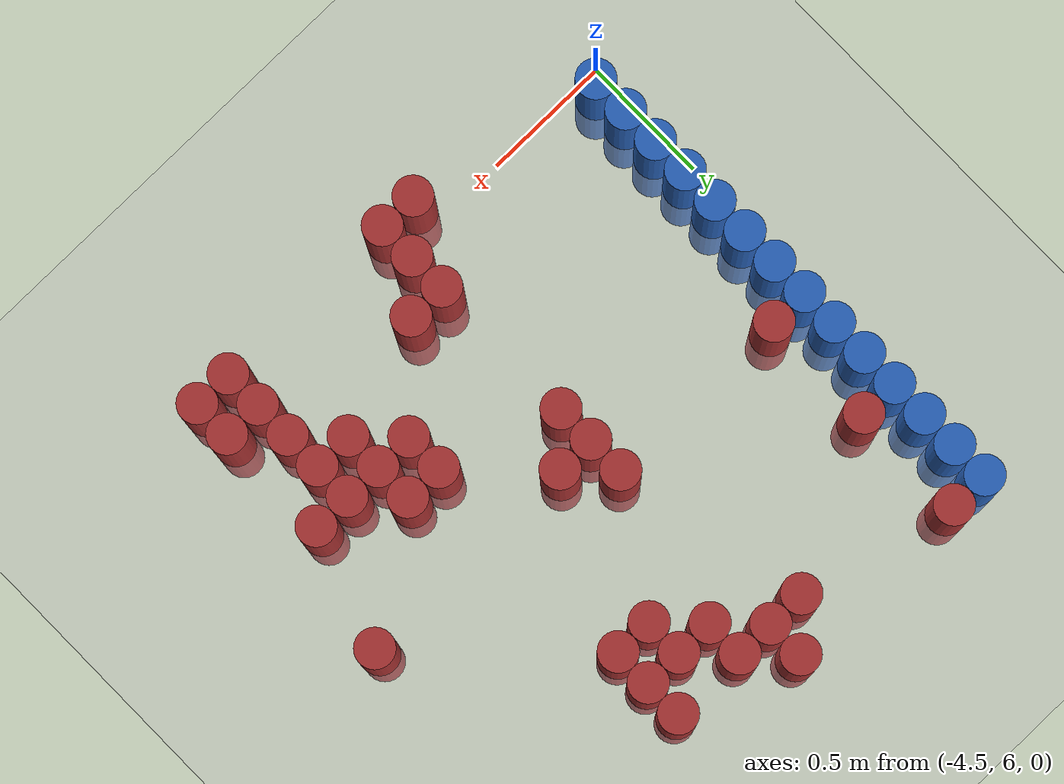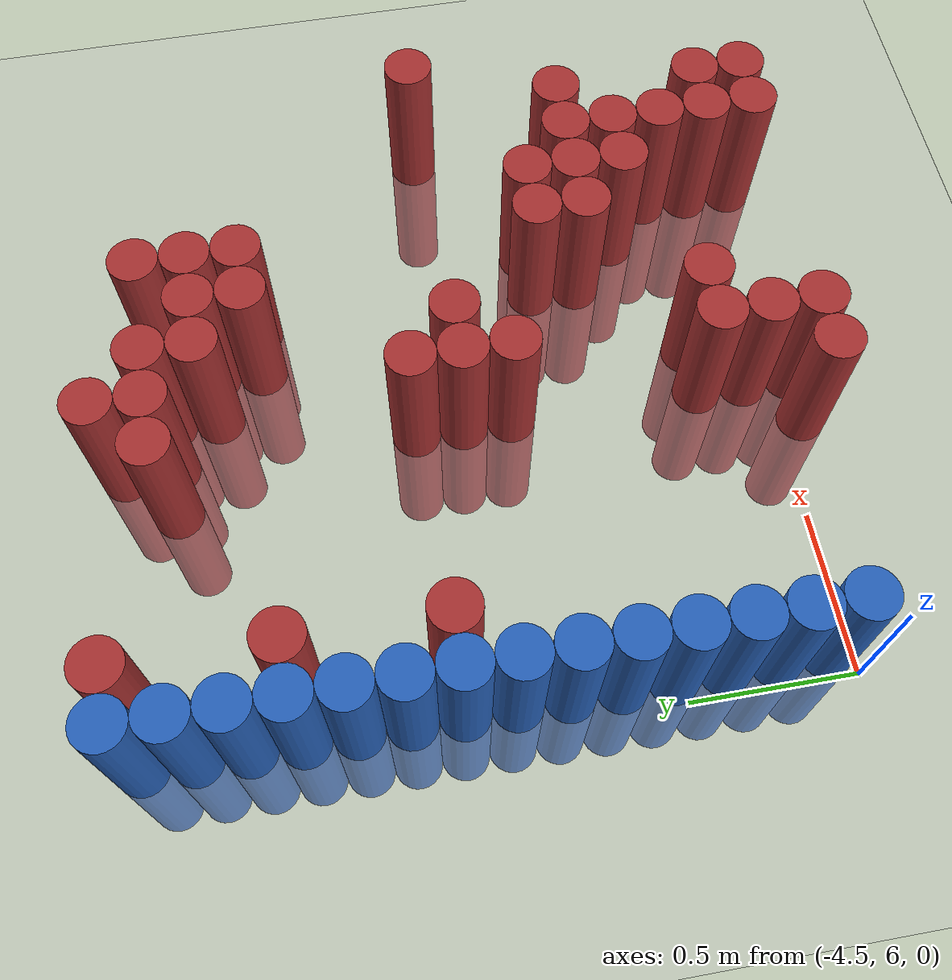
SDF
<sdf version="1.6">
 <world name="default">
  <model name="ground_plane">
   <static>1</static>
   <link name="link">
    <collision name="collision">
     <geometry><plane><normal>0 0 1</normal><size>100 100</size></plane></geometry>
     <surface><friction><ode><mu>100</mu><mu2>50</mu2></ode></friction></surface>
    </collision>
    <visual name="visual">
     <cast_shadows>0</cast_shadows>
     <geometry><plane><normal>0 0 1</normal><size>100 100</size></plane></geometry>
     <material>
      <script><uri>file://media/materials/scripts/gazebo.material</uri><name>Gazebo/Grey</name></script>
     </material>
    </visual>
   </link>
  </model>
  <model name="unit_cylinder_102">
   <static>1</static>
   <pose>-4.425000 6.075000 0.000000 0.000000 0.000000 0.000000</pose>
   <link name="link">
    <inertial>
     <mass>1</mass>
     <inertia><ixx>0.145833</ixx><ixy>0</ixy><ixz>0</ixz><iyy>0.145833</iyy><iyz>0</iyz><izz>0.125</izz></inertia>
    </inertial>
    <collision name="collision">
     <geometry><cylinder><radius>0.075000</radius><length>1</length></cylinder></geometry>
    </collision>
    <visual name="visual">
     <geometry><cylinder><radius>0.075000</radius><length>1</length></cylinder></geometry>
     <material>
      <ambient>0.152000 0.379000 0.720000 1</ambient>
      <diffuse>0.152000 0.379000 0.720000 1</diffuse>
     </material>
     <material>
      <script><name>Gazebo/Grey</name><uri>file://media/materials/scripts/gazebo.material</uri></script>
     </material>
    </visual>
   </link>
  </model>
  <model name="unit_cylinder_103">
   <static>1</static>
   <pose>-4.425000 6.225000 0.000000 0.000000 0.000000 0.000000</pose>
   <link name="link">
    <inertial>
     <mass>1</mass>
     <inertia><ixx>0.145833</ixx><ixy>0</ixy><ixz>0</ixz><iyy>0.145833</iyy><iyz>0</iyz><izz>0.125</izz></inertia>
    </inertial>
    <collision name="collision">
     <geometry><cylinder><radius>0.075000</radius><length>1</length></cylinder></geometry>
    </collision>
    <visual name="visual">
     <geometry><cylinder><radius>0.075000</radius><length>1</length></cylinder></geometry>
     <material>
      <ambient>0.152000 0.379000 0.720000 1</ambient>
      <diffuse>0.152000 0.379000 0.720000 1</diffuse>
     </material>
     <material>
      <script><name>Gazebo/Grey</name><uri>file://media/materials/scripts/gazebo.material</uri></script>
     </material>
    </visual>
   </link>
  </model>
  <model name="unit_cylinder_104">
   <static>1</static>
   <pose>-4.425000 6.375000 0.000000 0.000000 0.000000 0.000000</pose>
   <link name="link">
    <inertial>
     <mass>1</mass>
     <inertia><ixx>0.145833</ixx><ixy>0</ixy><ixz>0</ixz><iyy>0.145833</iyy><iyz>0</iyz><izz>0.125</izz></inertia>
    </inertial>
    <collision name="collision">
     <geometry><cylinder><radius>0.075000</radius><length>1</length></cylinder></geometry>
    </collision>
    <visual name="visual">
     <geometry><cylinder><radius>0.075000</radius><length>1</length></cylinder></geometry>
     <material>
      <ambient>0.152000 0.379000 0.720000 1</ambient>
      <diffuse>0.152000 0.379000 0.720000 1</diffuse>
     </material>
     <material>
      <script><name>Gazebo/Grey</name><uri>file://media/materials/scripts/gazebo.material</uri></script>
     </material>
    </visual>
   </link>
  </model>
  <model name="unit_cylinder_105">
   <static>1</static>
   <pose>-4.425000 6.525000 0.000000 0.000000 0.000000 0.000000</pose>
   <link name="link">
    <inertial>
     <mass>1</mass>
     <inertia><ixx>0.145833</ixx><ixy>0</ixy><ixz>0</ixz><iyy>0.145833</iyy><iyz>0</iyz><izz>0.125</izz></inertia>
    </inertial>
    <collision name="collision">
     <geometry><cylinder><radius>0.075000</radius><length>1</length></cylinder></geometry>
    </collision>
    <visual name="visual">
     <geometry><cylinder><radius>0.075000</radius><length>1</length></cylinder></geometry>
     <material>
      <ambient>0.152000 0.379000 0.720000 1</ambient>
      <diffuse>0.152000 0.379000 0.720000 1</diffuse>
     </material>
     <material>
      <script><name>Gazebo/Grey</name><uri>file://media/materials/scripts/gazebo.material</uri></script>
     </material>
    </visual>
   </link>
  </model>
  <model name="unit_cylinder_106">
   <static>1</static>
   <pose>-4.425000 6.675000 0.000000 0.000000 0.000000 0.000000</pose>
   <link name="link">
    <inertial>
     <mass>1</mass>
     <inertia><ixx>0.145833</ixx><ixy>0</ixy><ixz>0</ixz><iyy>0.145833</iyy><iyz>0</iyz><izz>0.125</izz></inertia>
    </inertial>
    <collision name="collision">
     <geometry><cylinder><radius>0.075000</radius><length>1</length></cylinder></geometry>
    </collision>
    <visual name="visual">
     <geometry><cylinder><radius>0.075000</radius><length>1</length></cylinder></geometry>
     <material>
      <ambient>0.152000 0.379000 0.720000 1</ambient>
      <diffuse>0.152000 0.379000 0.720000 1</diffuse>
     </material>
     <material>
      <script><name>Gazebo/Grey</name><uri>file://media/materials/scripts/gazebo.material</uri></script>
     </material>
    </visual>
   </link>
  </model>
  <model name="unit_cylinder_107">
   <static>1</static>
   <pose>-4.425000 6.825000 0.000000 0.000000 0.000000 0.000000</pose>
   <link name="link">
    <inertial>
     <mass>1</mass>
     <inertia><ixx>0.145833</ixx><ixy>0</ixy><ixz>0</ixz><iyy>0.145833</iyy><iyz>0</iyz><izz>0.125</izz></inertia>
    </inertial>
    <collision name="collision">
     <geometry><cylinder><radius>0.075000</radius><length>1</length></cylinder></geometry>
    </collision>
    <visual name="visual">
     <geometry><cylinder><radius>0.075000</radius><length>1</length></cylinder></geometry>
     <material>
      <ambient>0.152000 0.379000 0.720000 1</ambient>
      <diffuse>0.152000 0.379000 0.720000 1</diffuse>
     </material>
     <material>
      <script><name>Gazebo/Grey</name><uri>file://media/materials/scripts/gazebo.material</uri></script>
     </material>
    </visual>
   </link>
  </model>
  <model name="unit_cylinder_108">
   <static>1</static>
   <pose>-4.425000 6.975000 0.000000 0.000000 0.000000 0.000000</pose>
   <link name="link">
    <inertial>
     <mass>1</mass>
     <inertia><ixx>0.145833</ixx><ixy>0</ixy><ixz>0</ixz><iyy>0.145833</iyy><iyz>0</iyz><izz>0.125</izz></inertia>
    </inertial>
    <collision name="collision">
     <geometry><cylinder><radius>0.075000</radius><length>1</length></cylinder></geometry>
    </collision>
    <visual name="visual">
     <geometry><cylinder><radius>0.075000</radius><length>1</length></cylinder></geometry>
     <material>
      <ambient>0.152000 0.379000 0.720000 1</ambient>
      <diffuse>0.152000 0.379000 0.720000 1</diffuse>
     </material>
     <material>
      <script><name>Gazebo/Grey</name><uri>file://media/materials/scripts/gazebo.material</uri></script>
     </material>
    </visual>
   </link>
  </model>
  <model name="unit_cylinder_109">
   <static>1</static>
   <pose>-4.425000 7.125000 0.000000 0.000000 0.000000 0.000000</pose>
   <link name="link">
    <inertial>
     <mass>1</mass>
     <inertia><ixx>0.145833</ixx><ixy>0</ixy><ixz>0</ixz><iyy>0.145833</iyy><iyz>0</iyz><izz>0.125</izz></inertia>
    </inertial>
    <collision name="collision">
     <geometry><cylinder><radius>0.075000</radius><length>1</length></cylinder></geometry>
    </collision>
    <visual name="visual">
     <geometry><cylinder><radius>0.075000</radius><length>1</length></cylinder></geometry>
     <material>
      <ambient>0.152000 0.379000 0.720000 1</ambient>
      <diffuse>0.152000 0.379000 0.720000 1</diffuse>
     </material>
     <material>
      <script><name>Gazebo/Grey</name><uri>file://media/materials/scripts/gazebo.material</uri></script>
     </material>
    </visual>
   </link>
  </model>
  <model name="unit_cylinder_110">
   <static>1</static>
   <pose>-4.425000 7.275000 0.000000 0.000000 0.000000 0.000000</pose>
   <link name="link">
    <inertial>
     <mass>1</mass>
     <inertia><ixx>0.145833</ixx><ixy>0</ixy><ixz>0</ixz><iyy>0.145833</iyy><iyz>0</iyz><izz>0.125</izz></inertia>
    </inertial>
    <collision name="collision">
     <geometry><cylinder><radius>0.075000</radius><length>1</length></cylinder></geometry>
    </collision>
    <visual name="visual">
     <geometry><cylinder><radius>0.075000</radius><length>1</length></cylinder></geometry>
     <material>
      <ambient>0.152000 0.379000 0.720000 1</ambient>
      <diffuse>0.152000 0.379000 0.720000 1</diffuse>
     </material>
     <material>
      <script><name>Gazebo/Grey</name><uri>file://media/materials/scripts/gazebo.material</uri></script>
     </material>
    </visual>
   </link>
  </model>
  <model name="unit_cylinder_111">
   <static>1</static>
   <pose>-4.425000 7.425000 0.000000 0.000000 0.000000 0.000000</pose>
   <link name="link">
    <inertial>
     <mass>1</mass>
     <inertia><ixx>0.145833</ixx><ixy>0</ixy><ixz>0</ixz><iyy>0.145833</iyy><iyz>0</iyz><izz>0.125</izz></inertia>
    </inertial>
    <collision name="collision">
     <geometry><cylinder><radius>0.075000</radius><length>1</length></cylinder></geometry>
    </collision>
    <visual name="visual">
     <geometry><cylinder><radius>0.075000</radius><length>1</length></cylinder></geometry>
     <material>
      <ambient>0.152000 0.379000 0.720000 1</ambient>
      <diffuse>0.152000 0.379000 0.720000 1</diffuse>
     </material>
     <material>
      <script><name>Gazebo/Grey</name><uri>file://media/materials/scripts/gazebo.material</uri></script>
     </material>
    </visual>
   </link>
  </model>
  <model name="unit_cylinder_112">
   <static>1</static>
   <pose>-4.425000 7.575000 0.000000 0.000000 0.000000 0.000000</pose>
   <link name="link">
    <inertial>
     <mass>1</mass>
     <inertia><ixx>0.145833</ixx><ixy>0</ixy><ixz>0</ixz><iyy>0.145833</iyy><iyz>0</iyz><izz>0.125</izz></inertia>
    </inertial>
    <collision name="collision">
     <geometry><cylinder><radius>0.075000</radius><length>1</length></cylinder></geometry>
    </collision>
    <visual name="visual">
     <geometry><cylinder><radius>0.075000</radius><length>1</length></cylinder></geometry>
     <material>
      <ambient>0.152000 0.379000 0.720000 1</ambient>
      <diffuse>0.152000 0.379000 0.720000 1</diffuse>
     </material>
     <material>
      <script><name>Gazebo/Grey</name><uri>file://media/materials/scripts/gazebo.material</uri></script>
     </material>
    </visual>
   </link>
  </model>
  <model name="unit_cylinder_113">
   <static>1</static>
   <pose>-4.425000 7.725000 0.000000 0.000000 0.000000 0.000000</pose>
   <link name="link">
    <inertial>
     <mass>1</mass>
     <inertia><ixx>0.145833</ixx><ixy>0</ixy><ixz>0</ixz><iyy>0.145833</iyy><iyz>0</iyz><izz>0.125</izz></inertia>
    </inertial>
    <collision name="collision">
     <geometry><cylinder><radius>0.075000</radius><length>1</length></cylinder></geometry>
    </collision>
    <visual name="visual">
     <geometry><cylinder><radius>0.075000</radius><length>1</length></cylinder></geometry>
     <material>
      <ambient>0.152000 0.379000 0.720000 1</ambient>
      <diffuse>0.152000 0.379000 0.720000 1</diffuse>
     </material>
     <material>
      <script><name>Gazebo/Grey</name><uri>file://media/materials/scripts/gazebo.material</uri></script>
     </material>
    </visual>
   </link>
  </model>
  <model name="unit_cylinder_114">
   <static>1</static>
   <pose>-4.425000 7.875000 0.000000 0.000000 0.000000 0.000000</pose>
   <link name="link">
    <inertial>
     <mass>1</mass>
     <inertia><ixx>0.145833</ixx><ixy>0</ixy><ixz>0</ixz><iyy>0.145833</iyy><iyz>0</iyz><izz>0.125</izz></inertia>
    </inertial>
    <collision name="collision">
     <geometry><cylinder><radius>0.075000</radius><length>1</length></cylinder></geometry>
    </collision>
    <visual name="visual">
     <geometry><cylinder><radius>0.075000</radius><length>1</length></cylinder></geometry>
     <material>
      <ambient>0.152000 0.379000 0.720000 1</ambient>
      <diffuse>0.152000 0.379000 0.720000 1</diffuse>
     </material>
     <material>
      <script><name>Gazebo/Grey</name><uri>file://media/materials/scripts/gazebo.material</uri></script>
     </material>
    </visual>
   </link>
  </model>
  <model name="unit_cylinder_115">
   <static>1</static>
   <pose>-4.425000 8.025000 0.000000 0.000000 0.000000 0.000000</pose>
   <link name="link">
    <inertial>
     <mass>1</mass>
     <inertia><ixx>0.145833</ixx><ixy>0</ixy><ixz>0</ixz><iyy>0.145833</iyy><iyz>0</iyz><izz>0.125</izz></inertia>
    </inertial>
    <collision name="collision">
     <geometry><cylinder><radius>0.075000</radius><length>1</length></cylinder></geometry>
    </collision>
    <visual name="visual">
     <geometry><cylinder><radius>0.075000</radius><length>1</length></cylinder></geometry>
     <material>
      <ambient>0.152000 0.379000 0.720000 1</ambient>
      <diffuse>0.152000 0.379000 0.720000 1</diffuse>
     </material>
     <material>
      <script><name>Gazebo/Grey</name><uri>file://media/materials/scripts/gazebo.material</uri></script>
     </material>
    </visual>
   </link>
  </model>
  <model name="unit_cylinder_129">
   <static>1</static>
   <pose>-4.275000 7.125000 0.000000 0.000000 0.000000 0.000000</pose>
   <link name="link">
    <inertial>
     <mass>1</mass>
     <inertia><ixx>0.145833</ixx><ixy>0</ixy><ixz>0</ixz><iyy>0.145833</iyy><iyz>0</iyz><izz>0.125</izz></inertia>
    </inertial>
    <collision name="collision">
     <geometry><cylinder><radius>0.075000</radius><length>1</length></cylinder></geometry>
    </collision>
    <visual name="visual">
     <geometry><cylinder><radius>0.075000</radius><length>1</length></cylinder></geometry>
     <material>
      <ambient>0.648000 0.192000 0.192000 1</ambient>
      <diffuse>0.648000 0.192000 0.192000 1</diffuse>
     </material>
     <material>
      <script><name>Gazebo/Grey</name><uri>file://media/materials/scripts/gazebo.material</uri></script>
     </material>
    </visual>
   </link>
  </model>
  <model name="unit_cylinder_130">
   <static>1</static>
   <pose>-4.275000 7.575000 0.000000 0.000000 0.000000 0.000000</pose>
   <link name="link">
    <inertial>
     <mass>1</mass>
     <inertia><ixx>0.145833</ixx><ixy>0</ixy><ixz>0</ixz><iyy>0.145833</iyy><iyz>0</iyz><izz>0.125</izz></inertia>
    </inertial>
    <collision name="collision">
     <geometry><cylinder><radius>0.075000</radius><length>1</length></cylinder></geometry>
    </collision>
    <visual name="visual">
     <geometry><cylinder><radius>0.075000</radius><length>1</length></cylinder></geometry>
     <material>
      <ambient>0.648000 0.192000 0.192000 1</ambient>
      <diffuse>0.648000 0.192000 0.192000 1</diffuse>
     </material>
     <material>
      <script><name>Gazebo/Grey</name><uri>file://media/materials/scripts/gazebo.material</uri></script>
     </material>
    </visual>
   </link>
  </model>
  <model name="unit_cylinder_131">
   <static>1</static>
   <pose>-4.275000 8.025000 0.000000 0.000000 0.000000 0.000000</pose>
   <link name="link">
    <inertial>
     <mass>1</mass>
     <inertia><ixx>0.145833</ixx><ixy>0</ixy><ixz>0</ixz><iyy>0.145833</iyy><iyz>0</iyz><izz>0.125</izz></inertia>
    </inertial>
    <collision name="collision">
     <geometry><cylinder><radius>0.075000</radius><length>1</length></cylinder></geometry>
    </collision>
    <visual name="visual">
     <geometry><cylinder><radius>0.075000</radius><length>1</length></cylinder></geometry>
     <material>
      <ambient>0.648000 0.192000 0.192000 1</ambient>
      <diffuse>0.648000 0.192000 0.192000 1</diffuse>
     </material>
     <material>
      <script><name>Gazebo/Grey</name><uri>file://media/materials/scripts/gazebo.material</uri></script>
     </material>
    </visual>
   </link>
  </model>
  <model name="unit_cylinder_158">
   <static>1</static>
   <pose>-3.675000 5.925000 0.000000 0.000000 0.000000 0.000000</pose>
   <link name="link">
    <inertial>
     <mass>1</mass>
     <inertia><ixx>0.145833</ixx><ixy>0</ixy><ixz>0</ixz><iyy>0.145833</iyy><iyz>0</iyz><izz>0.125</izz></inertia>
    </inertial>
    <collision name="collision">
     <geometry><cylinder><radius>0.075000</radius><length>1</length></cylinder></geometry>
    </collision>
    <visual name="visual">
     <geometry><cylinder><radius>0.075000</radius><length>1</length></cylinder></geometry>
     <material>
      <ambient>0.648000 0.192000 0.192000 1</ambient>
      <diffuse>0.648000 0.192000 0.192000 1</diffuse>
     </material>
     <material>
      <script><name>Gazebo/Grey</name><uri>file://media/materials/scripts/gazebo.material</uri></script>
     </material>
    </visual>
   </link>
  </model>
  <model name="unit_cylinder_159">
   <static>1</static>
   <pose>-3.675000 7.875000 0.000000 0.000000 0.000000 0.000000</pose>
   <link name="link">
    <inertial>
     <mass>1</mass>
     <inertia><ixx>0.145833</ixx><ixy>0</ixy><ixz>0</ixz><iyy>0.145833</iyy><iyz>0</iyz><izz>0.125</izz></inertia>
    </inertial>
    <collision name="collision">
     <geometry><cylinder><radius>0.075000</radius><length>1</length></cylinder></geometry>
    </collision>
    <visual name="visual">
     <geometry><cylinder><radius>0.075000</radius><length>1</length></cylinder></geometry>
     <material>
      <ambient>0.648000 0.192000 0.192000 1</ambient>
      <diffuse>0.648000 0.192000 0.192000 1</diffuse>
     </material>
     <material>
      <script><name>Gazebo/Grey</name><uri>file://media/materials/scripts/gazebo.material</uri></script>
     </material>
    </visual>
   </link>
  </model>
  <model name="unit_cylinder_162">
   <static>1</static>
   <pose>-3.525000 5.925000 0.000000 0.000000 0.000000 0.000000</pose>
   <link name="link">
    <inertial>
     <mass>1</mass>
     <inertia><ixx>0.145833</ixx><ixy>0</ixy><ixz>0</ixz><iyy>0.145833</iyy><iyz>0</iyz><izz>0.125</izz></inertia>
    </inertial>
    <collision name="collision">
     <geometry><cylinder><radius>0.075000</radius><length>1</length></cylinder></geometry>
    </collision>
    <visual name="visual">
     <geometry><cylinder><radius>0.075000</radius><length>1</length></cylinder></geometry>
     <material>
      <ambient>0.648000 0.192000 0.192000 1</ambient>
      <diffuse>0.648000 0.192000 0.192000 1</diffuse>
     </material>
     <material>
      <script><name>Gazebo/Grey</name><uri>file://media/materials/scripts/gazebo.material</uri></script>
     </material>
    </visual>
   </link>
  </model>
  <model name="unit_cylinder_163">
   <static>1</static>
   <pose>-3.525000 6.075000 0.000000 0.000000 0.000000 0.000000</pose>
   <link name="link">
    <inertial>
     <mass>1</mass>
     <inertia><ixx>0.145833</ixx><ixy>0</ixy><ixz>0</ixz><iyy>0.145833</iyy><iyz>0</iyz><izz>0.125</izz></inertia>
    </inertial>
    <collision name="collision">
     <geometry><cylinder><radius>0.075000</radius><length>1</length></cylinder></geometry>
    </collision>
    <visual name="visual">
     <geometry><cylinder><radius>0.075000</radius><length>1</length></cylinder></geometry>
     <material>
      <ambient>0.648000 0.192000 0.192000 1</ambient>
      <diffuse>0.648000 0.192000 0.192000 1</diffuse>
     </material>
     <material>
      <script><name>Gazebo/Grey</name><uri>file://media/materials/scripts/gazebo.material</uri></script>
     </material>
    </visual>
   </link>
  </model>
  <model name="unit_cylinder_164">
   <static>1</static>
   <pose>-3.525000 6.225000 0.000000 0.000000 0.000000 0.000000</pose>
   <link name="link">
    <inertial>
     <mass>1</mass>
     <inertia><ixx>0.145833</ixx><ixy>0</ixy><ixz>0</ixz><iyy>0.145833</iyy><iyz>0</iyz><izz>0.125</izz></inertia>
    </inertial>
    <collision name="collision">
     <geometry><cylinder><radius>0.075000</radius><length>1</length></cylinder></geometry>
    </collision>
    <visual name="visual">
     <geometry><cylinder><radius>0.075000</radius><length>1</length></cylinder></geometry>
     <material>
      <ambient>0.648000 0.192000 0.192000 1</ambient>
      <diffuse>0.648000 0.192000 0.192000 1</diffuse>
     </material>
     <material>
      <script><name>Gazebo/Grey</name><uri>file://media/materials/scripts/gazebo.material</uri></script>
     </material>
    </visual>
   </link>
  </model>
  <model name="unit_cylinder_165">
   <static>1</static>
   <pose>-3.525000 6.825000 0.000000 0.000000 0.000000 0.000000</pose>
   <link name="link">
    <inertial>
     <mass>1</mass>
     <inertia><ixx>0.145833</ixx><ixy>0</ixy><ixz>0</ixz><iyy>0.145833</iyy><iyz>0</iyz><izz>0.125</izz></inertia>
    </inertial>
    <collision name="collision">
     <geometry><cylinder><radius>0.075000</radius><length>1</length></cylinder></geometry>
    </collision>
    <visual name="visual">
     <geometry><cylinder><radius>0.075000</radius><length>1</length></cylinder></geometry>
     <material>
      <ambient>0.648000 0.192000 0.192000 1</ambient>
      <diffuse>0.648000 0.192000 0.192000 1</diffuse>
     </material>
     <material>
      <script><name>Gazebo/Grey</name><uri>file://media/materials/scripts/gazebo.material</uri></script>
     </material>
    </visual>
   </link>
  </model>
  <model name="unit_cylinder_166">
   <static>1</static>
   <pose>-3.525000 6.975000 0.000000 0.000000 0.000000 0.000000</pose>
   <link name="link">
    <inertial>
     <mass>1</mass>
     <inertia><ixx>0.145833</ixx><ixy>0</ixy><ixz>0</ixz><iyy>0.145833</iyy><iyz>0</iyz><izz>0.125</izz></inertia>
    </inertial>
    <collision name="collision">
     <geometry><cylinder><radius>0.075000</radius><length>1</length></cylinder></geometry>
    </collision>
    <visual name="visual">
     <geometry><cylinder><radius>0.075000</radius><length>1</length></cylinder></geometry>
     <material>
      <ambient>0.648000 0.192000 0.192000 1</ambient>
      <diffuse>0.648000 0.192000 0.192000 1</diffuse>
     </material>
     <material>
      <script><name>Gazebo/Grey</name><uri>file://media/materials/scripts/gazebo.material</uri></script>
     </material>
    </visual>
   </link>
  </model>
  <model name="unit_cylinder_167">
   <static>1</static>
   <pose>-3.525000 7.125000 0.000000 0.000000 0.000000 0.000000</pose>
   <link name="link">
    <inertial>
     <mass>1</mass>
     <inertia><ixx>0.145833</ixx><ixy>0</ixy><ixz>0</ixz><iyy>0.145833</iyy><iyz>0</iyz><izz>0.125</izz></inertia>
    </inertial>
    <collision name="collision">
     <geometry><cylinder><radius>0.075000</radius><length>1</length></cylinder></geometry>
    </collision>
    <visual name="visual">
     <geometry><cylinder><radius>0.075000</radius><length>1</length></cylinder></geometry>
     <material>
      <ambient>0.648000 0.192000 0.192000 1</ambient>
      <diffuse>0.648000 0.192000 0.192000 1</diffuse>
     </material>
     <material>
      <script><name>Gazebo/Grey</name><uri>file://media/materials/scripts/gazebo.material</uri></script>
     </material>
    </visual>
   </link>
  </model>
  <model name="unit_cylinder_168">
   <static>1</static>
   <pose>-3.525000 7.875000 0.000000 0.000000 0.000000 0.000000</pose>
   <link name="link">
    <inertial>
     <mass>1</mass>
     <inertia><ixx>0.145833</ixx><ixy>0</ixy><ixz>0</ixz><iyy>0.145833</iyy><iyz>0</iyz><izz>0.125</izz></inertia>
    </inertial>
    <collision name="collision">
     <geometry><cylinder><radius>0.075000</radius><length>1</length></cylinder></geometry>
    </collision>
    <visual name="visual">
     <geometry><cylinder><radius>0.075000</radius><length>1</length></cylinder></geometry>
     <material>
      <ambient>0.648000 0.192000 0.192000 1</ambient>
      <diffuse>0.648000 0.192000 0.192000 1</diffuse>
     </material>
     <material>
      <script><name>Gazebo/Grey</name><uri>file://media/materials/scripts/gazebo.material</uri></script>
     </material>
    </visual>
   </link>
  </model>
  <model name="unit_cylinder_169">
   <static>1</static>
   <pose>-3.525000 8.025000 0.000000 0.000000 0.000000 0.000000</pose>
   <link name="link">
    <inertial>
     <mass>1</mass>
     <inertia><ixx>0.145833</ixx><ixy>0</ixy><ixz>0</ixz><iyy>0.145833</iyy><iyz>0</iyz><izz>0.125</izz></inertia>
    </inertial>
    <collision name="collision">
     <geometry><cylinder><radius>0.075000</radius><length>1</length></cylinder></geometry>
    </collision>
    <visual name="visual">
     <geometry><cylinder><radius>0.075000</radius><length>1</length></cylinder></geometry>
     <material>
      <ambient>0.648000 0.192000 0.192000 1</ambient>
      <diffuse>0.648000 0.192000 0.192000 1</diffuse>
     </material>
     <material>
      <script><name>Gazebo/Grey</name><uri>file://media/materials/scripts/gazebo.material</uri></script>
     </material>
    </visual>
   </link>
  </model>
  <model name="unit_cylinder_175">
   <static>1</static>
   <pose>-3.375000 6.225000 0.000000 0.000000 0.000000 0.000000</pose>
   <link name="link">
    <inertial>
     <mass>1</mass>
     <inertia><ixx>0.145833</ixx><ixy>0</ixy><ixz>0</ixz><iyy>0.145833</iyy><iyz>0</iyz><izz>0.125</izz></inertia>
    </inertial>
    <collision name="collision">
     <geometry><cylinder><radius>0.075000</radius><length>1</length></cylinder></geometry>
    </collision>
    <visual name="visual">
     <geometry><cylinder><radius>0.075000</radius><length>1</length></cylinder></geometry>
     <material>
      <ambient>0.648000 0.192000 0.192000 1</ambient>
      <diffuse>0.648000 0.192000 0.192000 1</diffuse>
     </material>
     <material>
      <script><name>Gazebo/Grey</name><uri>file://media/materials/scripts/gazebo.material</uri></script>
     </material>
    </visual>
   </link>
  </model>
  <model name="unit_cylinder_176">
   <static>1</static>
   <pose>-3.375000 6.975000 0.000000 0.000000 0.000000 0.000000</pose>
   <link name="link">
    <inertial>
     <mass>1</mass>
     <inertia><ixx>0.145833</ixx><ixy>0</ixy><ixz>0</ixz><iyy>0.145833</iyy><iyz>0</iyz><izz>0.125</izz></inertia>
    </inertial>
    <collision name="collision">
     <geometry><cylinder><radius>0.075000</radius><length>1</length></cylinder></geometry>
    </collision>
    <visual name="visual">
     <geometry><cylinder><radius>0.075000</radius><length>1</length></cylinder></geometry>
     <material>
      <ambient>0.648000 0.192000 0.192000 1</ambient>
      <diffuse>0.648000 0.192000 0.192000 1</diffuse>
     </material>
     <material>
      <script><name>Gazebo/Grey</name><uri>file://media/materials/scripts/gazebo.material</uri></script>
     </material>
    </visual>
   </link>
  </model>
  <model name="unit_cylinder_177">
   <static>1</static>
   <pose>-3.375000 7.725000 0.000000 0.000000 0.000000 0.000000</pose>
   <link name="link">
    <inertial>
     <mass>1</mass>
     <inertia><ixx>0.145833</ixx><ixy>0</ixy><ixz>0</ixz><iyy>0.145833</iyy><iyz>0</iyz><izz>0.125</izz></inertia>
    </inertial>
    <collision name="collision">
     <geometry><cylinder><radius>0.075000</radius><length>1</length></cylinder></geometry>
    </collision>
    <visual name="visual">
     <geometry><cylinder><radius>0.075000</radius><length>1</length></cylinder></geometry>
     <material>
      <ambient>0.648000 0.192000 0.192000 1</ambient>
      <diffuse>0.648000 0.192000 0.192000 1</diffuse>
     </material>
     <material>
      <script><name>Gazebo/Grey</name><uri>file://media/materials/scripts/gazebo.material</uri></script>
     </material>
    </visual>
   </link>
  </model>
  <model name="unit_cylinder_178">
   <static>1</static>
   <pose>-3.375000 7.875000 0.000000 0.000000 0.000000 0.000000</pose>
   <link name="link">
    <inertial>
     <mass>1</mass>
     <inertia><ixx>0.145833</ixx><ixy>0</ixy><ixz>0</ixz><iyy>0.145833</iyy><iyz>0</iyz><izz>0.125</izz></inertia>
    </inertial>
    <collision name="collision">
     <geometry><cylinder><radius>0.075000</radius><length>1</length></cylinder></geometry>
    </collision>
    <visual name="visual">
     <geometry><cylinder><radius>0.075000</radius><length>1</length></cylinder></geometry>
     <material>
      <ambient>0.648000 0.192000 0.192000 1</ambient>
      <diffuse>0.648000 0.192000 0.192000 1</diffuse>
     </material>
     <material>
      <script><name>Gazebo/Grey</name><uri>file://media/materials/scripts/gazebo.material</uri></script>
     </material>
    </visual>
   </link>
  </model>
  <model name="unit_cylinder_184">
   <static>1</static>
   <pose>-3.225000 7.575000 0.000000 0.000000 0.000000 0.000000</pose>
   <link name="link">
    <inertial>
     <mass>1</mass>
     <inertia><ixx>0.145833</ixx><ixy>0</ixy><ixz>0</ixz><iyy>0.145833</iyy><iyz>0</iyz><izz>0.125</izz></inertia>
    </inertial>
    <collision name="collision">
     <geometry><cylinder><radius>0.075000</radius><length>1</length></cylinder></geometry>
    </collision>
    <visual name="visual">
     <geometry><cylinder><radius>0.075000</radius><length>1</length></cylinder></geometry>
     <material>
      <ambient>0.648000 0.192000 0.192000 1</ambient>
      <diffuse>0.648000 0.192000 0.192000 1</diffuse>
     </material>
     <material>
      <script><name>Gazebo/Grey</name><uri>file://media/materials/scripts/gazebo.material</uri></script>
     </material>
    </visual>
   </link>
  </model>
  <model name="unit_cylinder_185">
   <static>1</static>
   <pose>-3.225000 7.725000 0.000000 0.000000 0.000000 0.000000</pose>
   <link name="link">
    <inertial>
     <mass>1</mass>
     <inertia><ixx>0.145833</ixx><ixy>0</ixy><ixz>0</ixz><iyy>0.145833</iyy><iyz>0</iyz><izz>0.125</izz></inertia>
    </inertial>
    <collision name="collision">
     <geometry><cylinder><radius>0.075000</radius><length>1</length></cylinder></geometry>
    </collision>
    <visual name="visual">
     <geometry><cylinder><radius>0.075000</radius><length>1</length></cylinder></geometry>
     <material>
      <ambient>0.648000 0.192000 0.192000 1</ambient>
      <diffuse>0.648000 0.192000 0.192000 1</diffuse>
     </material>
     <material>
      <script><name>Gazebo/Grey</name><uri>file://media/materials/scripts/gazebo.material</uri></script>
     </material>
    </visual>
   </link>
  </model>
  <model name="unit_cylinder_192">
   <static>1</static>
   <pose>-3.075000 6.525000 0.000000 0.000000 0.000000 0.000000</pose>
   <link name="link">
    <inertial>
     <mass>1</mass>
     <inertia><ixx>0.145833</ixx><ixy>0</ixy><ixz>0</ixz><iyy>0.145833</iyy><iyz>0</iyz><izz>0.125</izz></inertia>
    </inertial>
    <collision name="collision">
     <geometry><cylinder><radius>0.075000</radius><length>1</length></cylinder></geometry>
    </collision>
    <visual name="visual">
     <geometry><cylinder><radius>0.075000</radius><length>1</length></cylinder></geometry>
     <material>
      <ambient>0.648000 0.192000 0.192000 1</ambient>
      <diffuse>0.648000 0.192000 0.192000 1</diffuse>
     </material>
     <material>
      <script><name>Gazebo/Grey</name><uri>file://media/materials/scripts/gazebo.material</uri></script>
     </material>
    </visual>
   </link>
  </model>
  <model name="unit_cylinder_193">
   <static>1</static>
   <pose>-3.075000 6.675000 0.000000 0.000000 0.000000 0.000000</pose>
   <link name="link">
    <inertial>
     <mass>1</mass>
     <inertia><ixx>0.145833</ixx><ixy>0</ixy><ixz>0</ixz><iyy>0.145833</iyy><iyz>0</iyz><izz>0.125</izz></inertia>
    </inertial>
    <collision name="collision">
     <geometry><cylinder><radius>0.075000</radius><length>1</length></cylinder></geometry>
    </collision>
    <visual name="visual">
     <geometry><cylinder><radius>0.075000</radius><length>1</length></cylinder></geometry>
     <material>
      <ambient>0.648000 0.192000 0.192000 1</ambient>
      <diffuse>0.648000 0.192000 0.192000 1</diffuse>
     </material>
     <material>
      <script><name>Gazebo/Grey</name><uri>file://media/materials/scripts/gazebo.material</uri></script>
     </material>
    </visual>
   </link>
  </model>
  <model name="unit_cylinder_194">
   <static>1</static>
   <pose>-3.075000 7.575000 0.000000 0.000000 0.000000 0.000000</pose>
   <link name="link">
    <inertial>
     <mass>1</mass>
     <inertia><ixx>0.145833</ixx><ixy>0</ixy><ixz>0</ixz><iyy>0.145833</iyy><iyz>0</iyz><izz>0.125</izz></inertia>
    </inertial>
    <collision name="collision">
     <geometry><cylinder><radius>0.075000</radius><length>1</length></cylinder></geometry>
    </collision>
    <visual name="visual">
     <geometry><cylinder><radius>0.075000</radius><length>1</length></cylinder></geometry>
     <material>
      <ambient>0.648000 0.192000 0.192000 1</ambient>
      <diffuse>0.648000 0.192000 0.192000 1</diffuse>
     </material>
     <material>
      <script><name>Gazebo/Grey</name><uri>file://media/materials/scripts/gazebo.material</uri></script>
     </material>
    </visual>
   </link>
  </model>
  <model name="unit_cylinder_195">
   <static>1</static>
   <pose>-3.075000 7.725000 0.000000 0.000000 0.000000 0.000000</pose>
   <link name="link">
    <inertial>
     <mass>1</mass>
     <inertia><ixx>0.145833</ixx><ixy>0</ixy><ixz>0</ixz><iyy>0.145833</iyy><iyz>0</iyz><izz>0.125</izz></inertia>
    </inertial>
    <collision name="collision">
     <geometry><cylinder><radius>0.075000</radius><length>1</length></cylinder></geometry>
    </collision>
    <visual name="visual">
     <geometry><cylinder><radius>0.075000</radius><length>1</length></cylinder></geometry>
     <material>
      <ambient>0.648000 0.192000 0.192000 1</ambient>
      <diffuse>0.648000 0.192000 0.192000 1</diffuse>
     </material>
     <material>
      <script><name>Gazebo/Grey</name><uri>file://media/materials/scripts/gazebo.material</uri></script>
     </material>
    </visual>
   </link>
  </model>
  <model name="unit_cylinder_196">
   <static>1</static>
   <pose>-3.075000 7.875000 0.000000 0.000000 0.000000 0.000000</pose>
   <link name="link">
    <inertial>
     <mass>1</mass>
     <inertia><ixx>0.145833</ixx><ixy>0</ixy><ixz>0</ixz><iyy>0.145833</iyy><iyz>0</iyz><izz>0.125</izz></inertia>
    </inertial>
    <collision name="collision">
     <geometry><cylinder><radius>0.075000</radius><length>1</length></cylinder></geometry>
    </collision>
    <visual name="visual">
     <geometry><cylinder><radius>0.075000</radius><length>1</length></cylinder></geometry>
     <material>
      <ambient>0.648000 0.192000 0.192000 1</ambient>
      <diffuse>0.648000 0.192000 0.192000 1</diffuse>
     </material>
     <material>
      <script><name>Gazebo/Grey</name><uri>file://media/materials/scripts/gazebo.material</uri></script>
     </material>
    </visual>
   </link>
  </model>
  <model name="unit_cylinder_205">
   <static>1</static>
   <pose>-2.925000 6.375000 0.000000 0.000000 0.000000 0.000000</pose>
   <link name="link">
    <inertial>
     <mass>1</mass>
     <inertia><ixx>0.145833</ixx><ixy>0</ixy><ixz>0</ixz><iyy>0.145833</iyy><iyz>0</iyz><izz>0.125</izz></inertia>
    </inertial>
    <collision name="collision">
     <geometry><cylinder><radius>0.075000</radius><length>1</length></cylinder></geometry>
    </collision>
    <visual name="visual">
     <geometry><cylinder><radius>0.075000</radius><length>1</length></cylinder></geometry>
     <material>
      <ambient>0.648000 0.192000 0.192000 1</ambient>
      <diffuse>0.648000 0.192000 0.192000 1</diffuse>
     </material>
     <material>
      <script><name>Gazebo/Grey</name><uri>file://media/materials/scripts/gazebo.material</uri></script>
     </material>
    </visual>
   </link>
  </model>
  <model name="unit_cylinder_206">
   <static>1</static>
   <pose>-2.925000 6.525000 0.000000 0.000000 0.000000 0.000000</pose>
   <link name="link">
    <inertial>
     <mass>1</mass>
     <inertia><ixx>0.145833</ixx><ixy>0</ixy><ixz>0</ixz><iyy>0.145833</iyy><iyz>0</iyz><izz>0.125</izz></inertia>
    </inertial>
    <collision name="collision">
     <geometry><cylinder><radius>0.075000</radius><length>1</length></cylinder></geometry>
    </collision>
    <visual name="visual">
     <geometry><cylinder><radius>0.075000</radius><length>1</length></cylinder></geometry>
     <material>
      <ambient>0.648000 0.192000 0.192000 1</ambient>
      <diffuse>0.648000 0.192000 0.192000 1</diffuse>
     </material>
     <material>
      <script><name>Gazebo/Grey</name><uri>file://media/materials/scripts/gazebo.material</uri></script>
     </material>
    </visual>
   </link>
  </model>
  <model name="unit_cylinder_207">
   <static>1</static>
   <pose>-2.925000 6.675000 0.000000 0.000000 0.000000 0.000000</pose>
   <link name="link">
    <inertial>
     <mass>1</mass>
     <inertia><ixx>0.145833</ixx><ixy>0</ixy><ixz>0</ixz><iyy>0.145833</iyy><iyz>0</iyz><izz>0.125</izz></inertia>
    </inertial>
    <collision name="collision">
     <geometry><cylinder><radius>0.075000</radius><length>1</length></cylinder></geometry>
    </collision>
    <visual name="visual">
     <geometry><cylinder><radius>0.075000</radius><length>1</length></cylinder></geometry>
     <material>
      <ambient>0.648000 0.192000 0.192000 1</ambient>
      <diffuse>0.648000 0.192000 0.192000 1</diffuse>
     </material>
     <material>
      <script><name>Gazebo/Grey</name><uri>file://media/materials/scripts/gazebo.material</uri></script>
     </material>
    </visual>
   </link>
  </model>
  <model name="unit_cylinder_213">
   <static>1</static>
   <pose>-2.775000 5.925000 0.000000 0.000000 0.000000 0.000000</pose>
   <link name="link">
    <inertial>
     <mass>1</mass>
     <inertia><ixx>0.145833</ixx><ixy>0</ixy><ixz>0</ixz><iyy>0.145833</iyy><iyz>0</iyz><izz>0.125</izz></inertia>
    </inertial>
    <collision name="collision">
     <geometry><cylinder><radius>0.075000</radius><length>1</length></cylinder></geometry>
    </collision>
    <visual name="visual">
     <geometry><cylinder><radius>0.075000</radius><length>1</length></cylinder></geometry>
     <material>
      <ambient>0.648000 0.192000 0.192000 1</ambient>
      <diffuse>0.648000 0.192000 0.192000 1</diffuse>
     </material>
     <material>
      <script><name>Gazebo/Grey</name><uri>file://media/materials/scripts/gazebo.material</uri></script>
     </material>
    </visual>
   </link>
  </model>
  <model name="unit_cylinder_214">
   <static>1</static>
   <pose>-2.775000 6.075000 0.000000 0.000000 0.000000 0.000000</pose>
   <link name="link">
    <inertial>
     <mass>1</mass>
     <inertia><ixx>0.145833</ixx><ixy>0</ixy><ixz>0</ixz><iyy>0.145833</iyy><iyz>0</iyz><izz>0.125</izz></inertia>
    </inertial>
    <collision name="collision">
     <geometry><cylinder><radius>0.075000</radius><length>1</length></cylinder></geometry>
    </collision>
    <visual name="visual">
     <geometry><cylinder><radius>0.075000</radius><length>1</length></cylinder></geometry>
     <material>
      <ambient>0.648000 0.192000 0.192000 1</ambient>
      <diffuse>0.648000 0.192000 0.192000 1</diffuse>
     </material>
     <material>
      <script><name>Gazebo/Grey</name><uri>file://media/materials/scripts/gazebo.material</uri></script>
     </material>
    </visual>
   </link>
  </model>
  <model name="unit_cylinder_215">
   <static>1</static>
   <pose>-2.775000 6.225000 0.000000 0.000000 0.000000 0.000000</pose>
   <link name="link">
    <inertial>
     <mass>1</mass>
     <inertia><ixx>0.145833</ixx><ixy>0</ixy><ixz>0</ixz><iyy>0.145833</iyy><iyz>0</iyz><izz>0.125</izz></inertia>
    </inertial>
    <collision name="collision">
     <geometry><cylinder><radius>0.075000</radius><length>1</length></cylinder></geometry>
    </collision>
    <visual name="visual">
     <geometry><cylinder><radius>0.075000</radius><length>1</length></cylinder></geometry>
     <material>
      <ambient>0.648000 0.192000 0.192000 1</ambient>
      <diffuse>0.648000 0.192000 0.192000 1</diffuse>
     </material>
     <material>
      <script><name>Gazebo/Grey</name><uri>file://media/materials/scripts/gazebo.material</uri></script>
     </material>
    </visual>
   </link>
  </model>
  <model name="unit_cylinder_216">
   <static>1</static>
   <pose>-2.775000 6.375000 0.000000 0.000000 0.000000 0.000000</pose>
   <link name="link">
    <inertial>
     <mass>1</mass>
     <inertia><ixx>0.145833</ixx><ixy>0</ixy><ixz>0</ixz><iyy>0.145833</iyy><iyz>0</iyz><izz>0.125</izz></inertia>
    </inertial>
    <collision name="collision">
     <geometry><cylinder><radius>0.075000</radius><length>1</length></cylinder></geometry>
    </collision>
    <visual name="visual">
     <geometry><cylinder><radius>0.075000</radius><length>1</length></cylinder></geometry>
     <material>
      <ambient>0.648000 0.192000 0.192000 1</ambient>
      <diffuse>0.648000 0.192000 0.192000 1</diffuse>
     </material>
     <material>
      <script><name>Gazebo/Grey</name><uri>file://media/materials/scripts/gazebo.material</uri></script>
     </material>
    </visual>
   </link>
  </model>
  <model name="unit_cylinder_217">
   <static>1</static>
   <pose>-2.775000 6.525000 0.000000 0.000000 0.000000 0.000000</pose>
   <link name="link">
    <inertial>
     <mass>1</mass>
     <inertia><ixx>0.145833</ixx><ixy>0</ixy><ixz>0</ixz><iyy>0.145833</iyy><iyz>0</iyz><izz>0.125</izz></inertia>
    </inertial>
    <collision name="collision">
     <geometry><cylinder><radius>0.075000</radius><length>1</length></cylinder></geometry>
    </collision>
    <visual name="visual">
     <geometry><cylinder><radius>0.075000</radius><length>1</length></cylinder></geometry>
     <material>
      <ambient>0.648000 0.192000 0.192000 1</ambient>
      <diffuse>0.648000 0.192000 0.192000 1</diffuse>
     </material>
     <material>
      <script><name>Gazebo/Grey</name><uri>file://media/materials/scripts/gazebo.material</uri></script>
     </material>
    </visual>
   </link>
  </model>
  <model name="unit_cylinder_224">
   <static>1</static>
   <pose>-2.625000 5.925000 0.000000 0.000000 0.000000 0.000000</pose>
   <link name="link">
    <inertial>
     <mass>1</mass>
     <inertia><ixx>0.145833</ixx><ixy>0</ixy><ixz>0</ixz><iyy>0.145833</iyy><iyz>0</iyz><izz>0.125</izz></inertia>
    </inertial>
    <collision name="collision">
     <geometry><cylinder><radius>0.075000</radius><length>1</length></cylinder></geometry>
    </collision>
    <visual name="visual">
     <geometry><cylinder><radius>0.075000</radius><length>1</length></cylinder></geometry>
     <material>
      <ambient>0.648000 0.192000 0.192000 1</ambient>
      <diffuse>0.648000 0.192000 0.192000 1</diffuse>
     </material>
     <material>
      <script><name>Gazebo/Grey</name><uri>file://media/materials/scripts/gazebo.material</uri></script>
     </material>
    </visual>
   </link>
  </model>
  <model name="unit_cylinder_225">
   <static>1</static>
   <pose>-2.625000 6.075000 0.000000 0.000000 0.000000 0.000000</pose>
   <link name="link">
    <inertial>
     <mass>1</mass>
     <inertia><ixx>0.145833</ixx><ixy>0</ixy><ixz>0</ixz><iyy>0.145833</iyy><iyz>0</iyz><izz>0.125</izz></inertia>
    </inertial>
    <collision name="collision">
     <geometry><cylinder><radius>0.075000</radius><length>1</length></cylinder></geometry>
    </collision>
    <visual name="visual">
     <geometry><cylinder><radius>0.075000</radius><length>1</length></cylinder></geometry>
     <material>
      <ambient>0.648000 0.192000 0.192000 1</ambient>
      <diffuse>0.648000 0.192000 0.192000 1</diffuse>
     </material>
     <material>
      <script><name>Gazebo/Grey</name><uri>file://media/materials/scripts/gazebo.material</uri></script>
     </material>
    </visual>
   </link>
  </model>
  <model name="unit_cylinder_226">
   <static>1</static>
   <pose>-2.625000 6.525000 0.000000 0.000000 0.000000 0.000000</pose>
   <link name="link">
    <inertial>
     <mass>1</mass>
     <inertia><ixx>0.145833</ixx><ixy>0</ixy><ixz>0</ixz><iyy>0.145833</iyy><iyz>0</iyz><izz>0.125</izz></inertia>
    </inertial>
    <collision name="collision">
     <geometry><cylinder><radius>0.075000</radius><length>1</length></cylinder></geometry>
    </collision>
    <visual name="visual">
     <geometry><cylinder><radius>0.075000</radius><length>1</length></cylinder></geometry>
     <material>
      <ambient>0.648000 0.192000 0.192000 1</ambient>
      <diffuse>0.648000 0.192000 0.192000 1</diffuse>
     </material>
     <material>
      <script><name>Gazebo/Grey</name><uri>file://media/materials/scripts/gazebo.material</uri></script>
     </material>
    </visual>
   </link>
  </model>
  <model name="unit_cylinder_230">
   <static>1</static>
   <pose>-2.475000 6.975000 0.000000 0.000000 0.000000 0.000000</pose>
   <link name="link">
    <inertial>
     <mass>1</mass>
     <inertia><ixx>0.145833</ixx><ixy>0</ixy><ixz>0</ixz><iyy>0.145833</iyy><iyz>0</iyz><izz>0.125</izz></inertia>
    </inertial>
    <collision name="collision">
     <geometry><cylinder><radius>0.075000</radius><length>1</length></cylinder></geometry>
    </collision>
    <visual name="visual">
     <geometry><cylinder><radius>0.075000</radius><length>1</length></cylinder></geometry>
     <material>
      <ambient>0.648000 0.192000 0.192000 1</ambient>
      <diffuse>0.648000 0.192000 0.192000 1</diffuse>
     </material>
     <material>
      <script><name>Gazebo/Grey</name><uri>file://media/materials/scripts/gazebo.material</uri></script>
     </material>
    </visual>
   </link>
  </model>
 </world>
</sdf>
